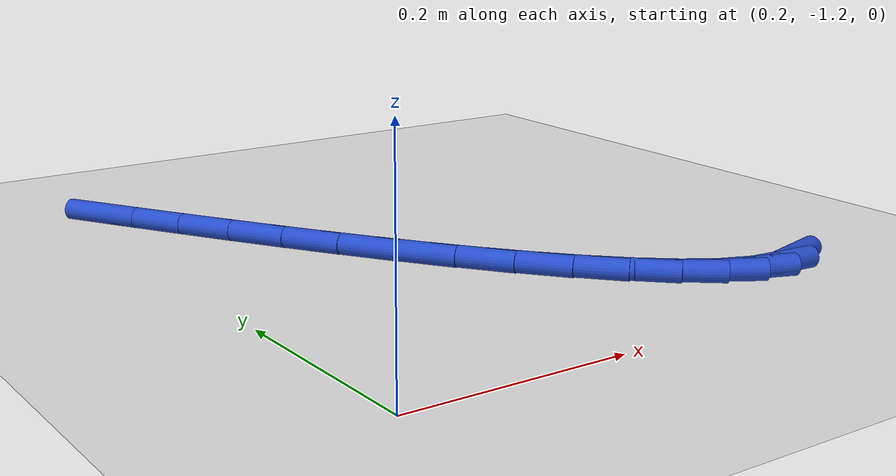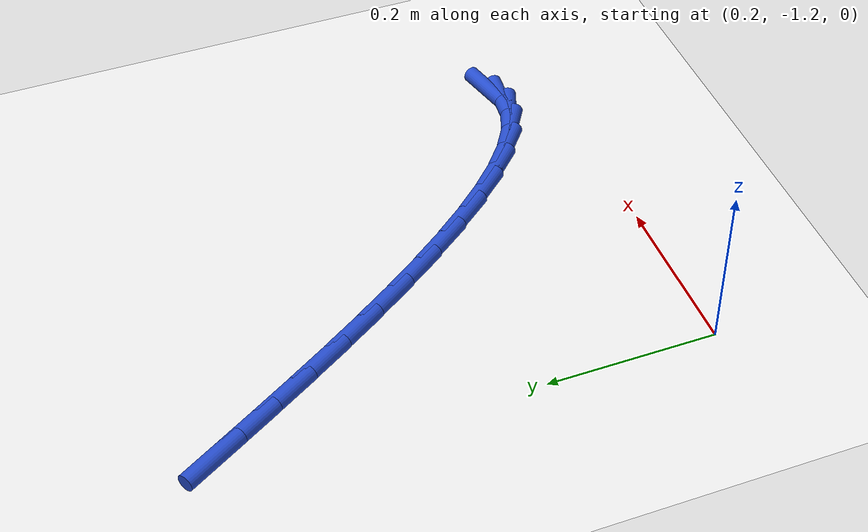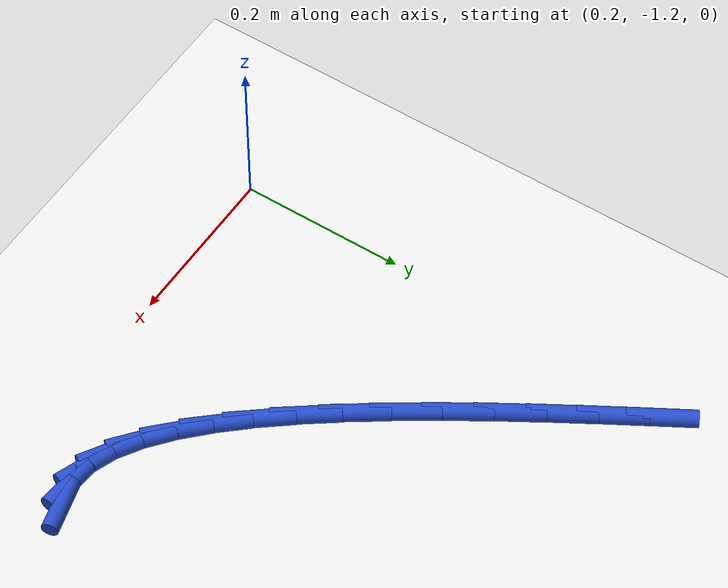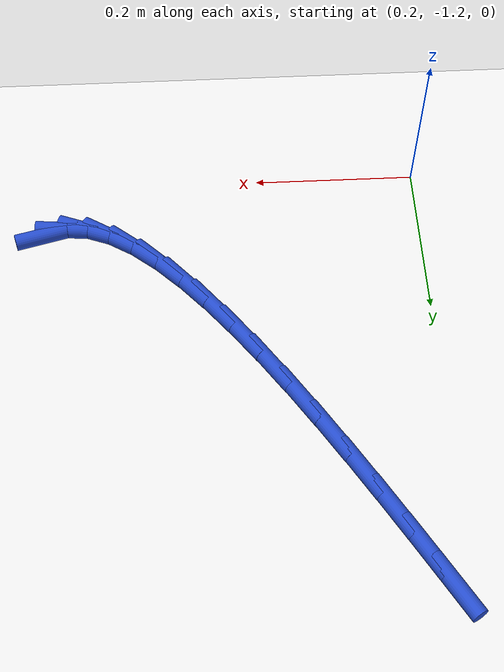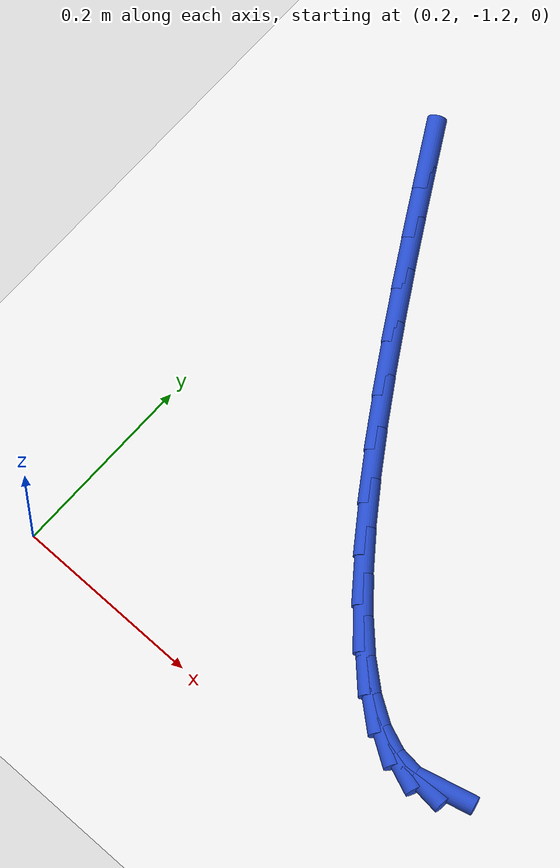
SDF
<sdf version="1.6">
 <world name="default">
  <model name="ground_plane">
   <static>1</static>
   <link name="link">
    <collision name="collision">
     <geometry><plane><normal>0 0 1</normal><size>100 100</size></plane></geometry>
     <surface><friction><ode><mu>100</mu><mu2>50</mu2></ode></friction></surface>
    </collision>
    <visual name="visual">
     <cast_shadows>0</cast_shadows>
     <geometry><plane><normal>0 0 1</normal><size>100 100</size></plane></geometry>
     <material>
      <script><uri>file://media/materials/scripts/gazebo.material</uri><name>Gazebo/WhiteGlow</name></script>
     </material>
    </visual>
   </link>
  </model>
  <model name="line">
   <link name="link_168">
    <pose>0.6663463229236135 -1.121807439936213 0.01 0 1.57 0.2563153643447356</pose>
    <collision name="collision">
     <geometry><cylinder><radius>0.01</radius><length>0.08</length></cylinder></geometry>
    </collision>
    <visual name="visual">
     <material>
      <script><name>Gazebo/Blue</name><uri>file://media/materials/scripts/gazebo.material</uri></script>
     </material>
     <geometry><cylinder><radius>0.01</radius><length>0.08</length></cylinder></geometry>
    </visual>
   </link>
   <link name="link_169">
    <pose>0.6411419227544578 -1.1284130091172906 0.01 0 1.57 -0.09118216798192068</pose>
    <collision name="collision">
     <geometry><cylinder><radius>0.01</radius><length>0.08</length></cylinder></geometry>
    </collision>
    <visual name="visual">
     <material>
      <script><name>Gazebo/Blue</name><uri>file://media/materials/scripts/gazebo.material</uri></script>
     </material>
     <geometry><cylinder><radius>0.01</radius><length>0.08</length></cylinder></geometry>
    </visual>
   </link>
   <link name="link_170">
    <pose>0.6143313186699271 -1.12596156241385 0.01 0 1.57 -0.362578094206564</pose>
    <collision name="collision">
     <geometry><cylinder><radius>0.01</radius><length>0.08</length></cylinder></geometry>
    </collision>
    <visual name="visual">
     <material>
      <script><name>Gazebo/Blue</name><uri>file://media/materials/scripts/gazebo.material</uri></script>
     </material>
     <geometry><cylinder><radius>0.01</radius><length>0.08</length></cylinder></geometry>
    </visual>
   </link>
   <link name="link_171">
    <pose>0.5861389265892433 -1.1152668045988618 0.01 0 1.57 -0.553209692909263</pose>
    <collision name="collision">
     <geometry><cylinder><radius>0.01</radius><length>0.08</length></cylinder></geometry>
    </collision>
    <visual name="visual">
     <material>
      <script><name>Gazebo/Blue</name><uri>file://media/materials/scripts/gazebo.material</uri></script>
     </material>
     <geometry><cylinder><radius>0.01</radius><length>0.08</length></cylinder></geometry>
    </visual>
   </link>
   <link name="link_172">
    <pose>0.5567891624316288 -1.097142440445298 0.01 0 1.57 -0.6850069850690191</pose>
    <collision name="collision">
     <geometry><cylinder><radius>0.01</radius><length>0.08</length></cylinder></geometry>
    </collision>
    <visual name="visual">
     <material>
      <script><name>Gazebo/Blue</name><uri>file://media/materials/scripts/gazebo.material</uri></script>
     </material>
     <geometry><cylinder><radius>0.01</radius><length>0.08</length></cylinder></geometry>
    </visual>
   </link>
   <link name="link_173">
    <pose>0.5265064421163057 -1.07240217472613 0.01 0 1.57 -0.7781047629353788</pose>
    <collision name="collision">
     <geometry><cylinder><radius>0.01</radius><length>0.08</length></cylinder></geometry>
    </collision>
    <visual name="visual">
     <material>
      <script><name>Gazebo/Blue</name><uri>file://media/materials/scripts/gazebo.material</uri></script>
     </material>
     <geometry><cylinder><radius>0.01</radius><length>0.08</length></cylinder></geometry>
    </visual>
   </link>
   <link name="link_174">
    <pose>0.4955151815624963 -1.0418597122143298 0.01 0 1.57 -0.8458495818897458</pose>
    <collision name="collision">
     <geometry><cylinder><radius>0.01</radius><length>0.08</length></cylinder></geometry>
    </collision>
    <visual name="visual">
     <material>
      <script><name>Gazebo/Blue</name><uri>file://media/materials/scripts/gazebo.material</uri></script>
     </material>
     <geometry><cylinder><radius>0.01</radius><length>0.08</length></cylinder></geometry>
    </visual>
   </link>
   <link name="link_175">
    <pose>0.46403979668942263 -1.0063287576828681 0.01 0 1.57 -0.8965085788840839</pose>
    <collision name="collision">
     <geometry><cylinder><radius>0.01</radius><length>0.08</length></cylinder></geometry>
    </collision>
    <visual name="visual">
     <material>
      <script><name>Gazebo/Blue</name><uri>file://media/materials/scripts/gazebo.material</uri></script>
     </material>
     <geometry><cylinder><radius>0.01</radius><length>0.08</length></cylinder></geometry>
    </visual>
   </link>
   <link name="link_176">
    <pose>0.4323047034163068 -0.9666230159047169 0.01 0 1.57 -0.9352139626375847</pose>
    <collision name="collision">
     <geometry><cylinder><radius>0.01</radius><length>0.08</length></cylinder></geometry>
    </collision>
    <visual name="visual">
     <material>
      <script><name>Gazebo/Blue</name><uri>file://media/materials/scripts/gazebo.material</uri></script>
     </material>
     <geometry><cylinder><radius>0.01</radius><length>0.08</length></cylinder></geometry>
    </visual>
   </link>
   <link name="link_177">
    <pose>0.40053431766237113 -0.9235561916528473 0.01 0 1.57 -0.9652190685623493</pose>
    <collision name="collision">
     <geometry><cylinder><radius>0.01</radius><length>0.08</length></cylinder></geometry>
    </collision>
    <visual name="visual">
     <material>
      <script><name>Gazebo/Blue</name><uri>file://media/materials/scripts/gazebo.material</uri></script>
     </material>
     <geometry><cylinder><radius>0.01</radius><length>0.08</length></cylinder></geometry>
    </visual>
   </link>
   <link name="link_178">
    <pose>0.368953055346838 -0.8779419897002312 0.01 0 1.57 -0.9886287989658673</pose>
    <collision name="collision">
     <geometry><cylinder><radius>0.01</radius><length>0.08</length></cylinder></geometry>
    </collision>
    <visual name="visual">
     <material>
      <script><name>Gazebo/Blue</name><uri>file://media/materials/scripts/gazebo.material</uri></script>
     </material>
     <geometry><cylinder><radius>0.01</radius><length>0.08</length></cylinder></geometry>
    </visual>
   </link>
   <link name="link_179">
    <pose>0.33778533238892927 -0.8305941148198399 0.01 0 1.57 -1.006816641021397</pose>
    <collision name="collision">
     <geometry><cylinder><radius>0.01</radius><length>0.08</length></cylinder></geometry>
    </collision>
    <visual name="visual">
     <material>
      <script><name>Gazebo/Blue</name><uri>file://media/materials/scripts/gazebo.material</uri></script>
     </material>
     <geometry><cylinder><radius>0.01</radius><length>0.08</length></cylinder></geometry>
    </visual>
   </link>
   <link name="link_180">
    <pose>0.30725556470786725 -0.7823262717846448 0.01 0 1.57 -1.0206614229235997</pose>
    <collision name="collision">
     <geometry><cylinder><radius>0.01</radius><length>0.08</length></cylinder></geometry>
    </collision>
    <visual name="visual">
     <material>
      <script><name>Gazebo/Blue</name><uri>file://media/materials/scripts/gazebo.material</uri></script>
     </material>
     <geometry><cylinder><radius>0.01</radius><length>0.08</length></cylinder></geometry>
    </visual>
   </link>
   <link name="link_181">
    <pose>0.27758816822287413 -0.7339521653676176 0.01 0 1.57 -1.0306759800548837</pose>
    <collision name="collision">
     <geometry><cylinder><radius>0.01</radius><length>0.08</length></cylinder></geometry>
    </collision>
    <visual name="visual">
     <material>
      <script><name>Gazebo/Blue</name><uri>file://media/materials/scripts/gazebo.material</uri></script>
     </material>
     <geometry><cylinder><radius>0.01</radius><length>0.08</length></cylinder></geometry>
    </visual>
   </link>
   <link name="link_182">
    <pose>0.24900755885317222 -0.6862855003417299 0.01 0 1.57 -1.0370624404224527</pose>
    <collision name="collision">
     <geometry><cylinder><radius>0.01</radius><length>0.08</length></cylinder></geometry>
    </collision>
    <visual name="visual">
     <material>
      <script><name>Gazebo/Blue</name><uri>file://media/materials/scripts/gazebo.material</uri></script>
     </material>
     <geometry><cylinder><radius>0.01</radius><length>0.08</length></cylinder></geometry>
    </visual>
   </link>
   <link name="link_183">
    <pose>0.2217381525179835 -0.6401399814799528 0.01 0 1.57 -1.0397032160733293</pose>
    <collision name="collision">
     <geometry><cylinder><radius>0.01</radius><length>0.08</length></cylinder></geometry>
    </collision>
    <visual name="visual">
     <material>
      <script><name>Gazebo/Blue</name><uri>file://media/materials/scripts/gazebo.material</uri></script>
     </material>
     <geometry><cylinder><radius>0.01</radius><length>0.08</length></cylinder></geometry>
    </visual>
   </link>
  </model>
 </world>
</sdf>
